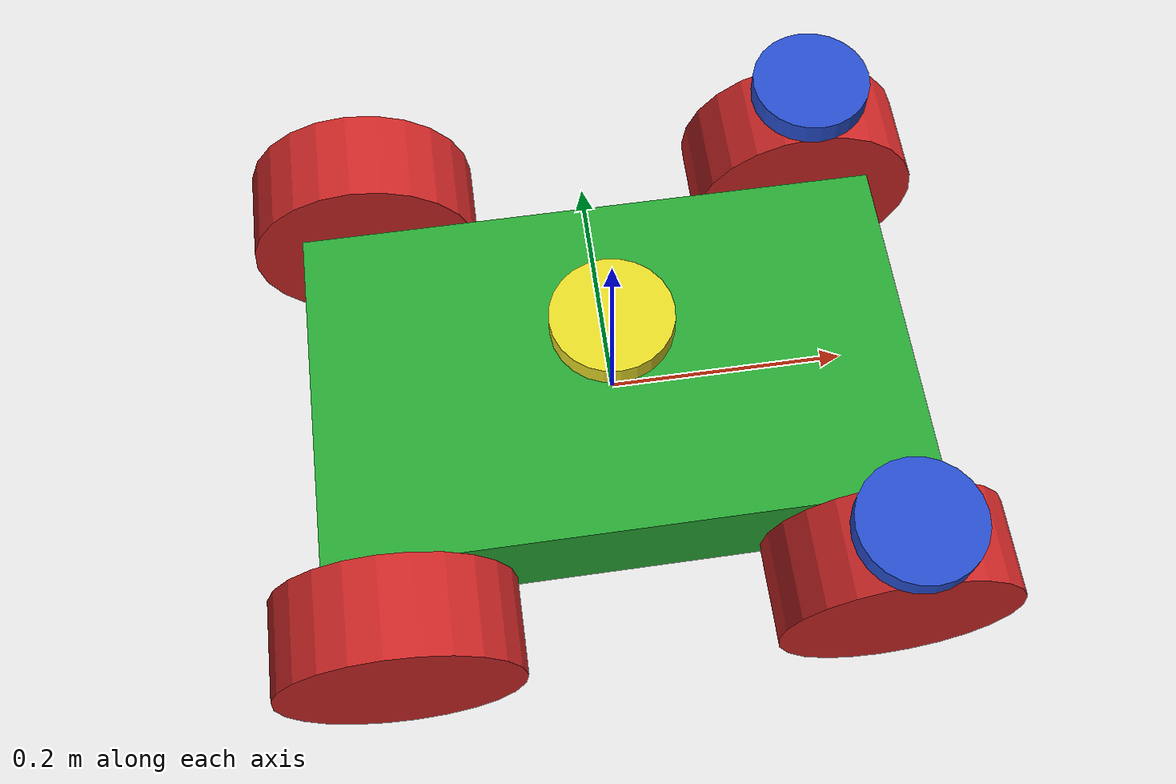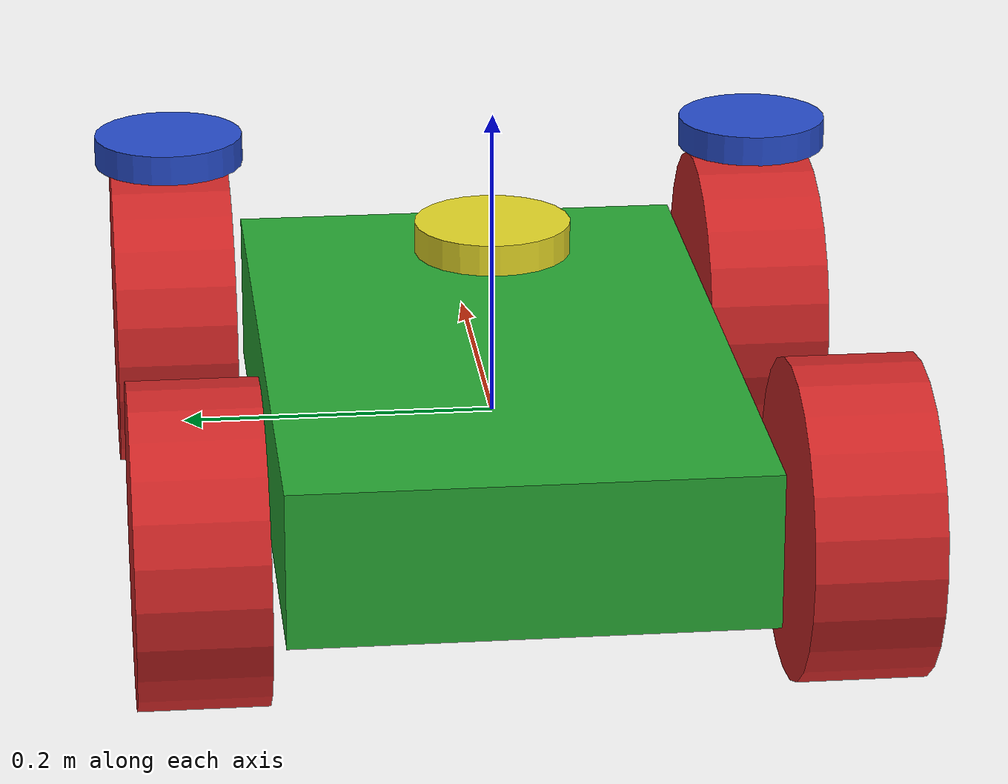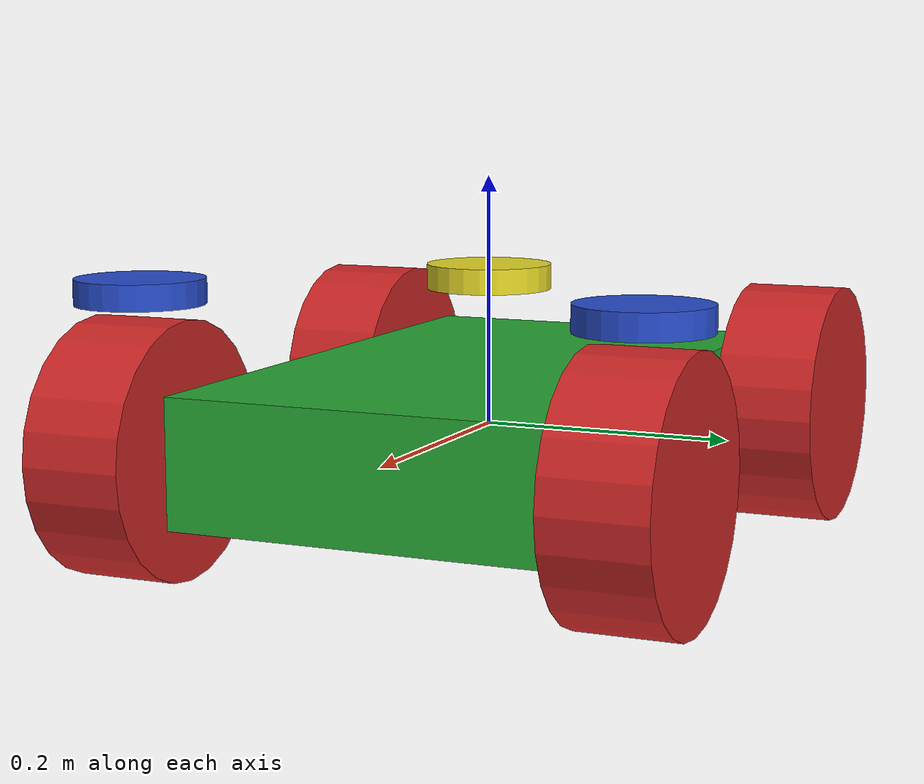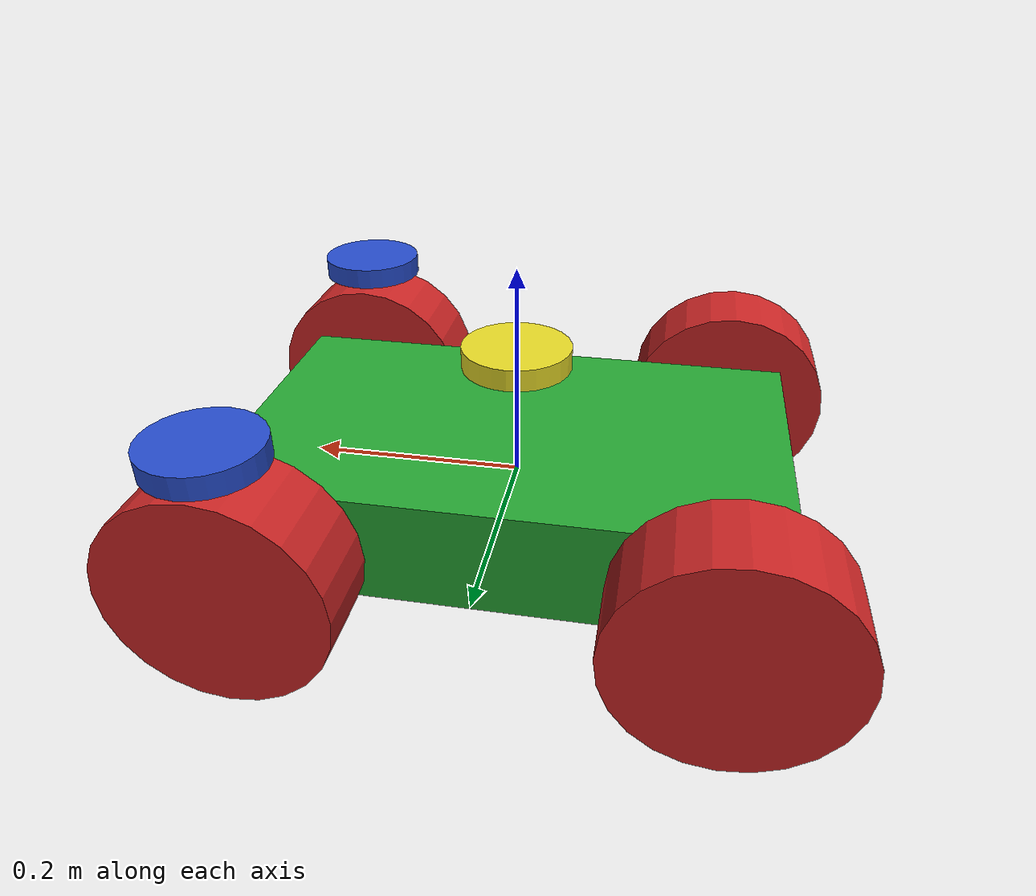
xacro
<?xml version="1.0"?>
<robot name="steer_bot" xmlns:xacro="http://wiki.ros.org/xacro">
  <!-- Include xacro for inertials, materials and wheels -->
  <xacro:include filename="$(find steer_bot_description)/urdf/wheel.xacro"/>

  <xacro:property name="robot_namespace" value="/steer_bot"/>

  <!-- Gazebo plugins -->
  <gazebo>
    <!-- Load ros_control plugin using the steer_bot_hardware_gazebo
    implementation of the hardware_interface::RobotHW -->
    <plugin name="gazebo_ros_control" filename="libgazebo_ros_control.so">
      <robotNamespace>${robot_namespace}</robotNamespace>
      <robotSimType>steer_bot_hardware_gazebo/SteerBotHardwareGazebo</robotSimType>
      <legacyModeNS>false</legacyModeNS>
    </plugin>
  </gazebo>

  <!-- Math constants -->
  <xacro:property name="deg_to_rad" value="0.01745329251994329577"/>

  <!-- Robot base dimensions -->
  <xacro:property name="base_length" value="0.5" />
  <xacro:property name="base_width" value="0.3" />
  <xacro:property name="base_height" value="0.1" />
  <xacro:property name="base_mass" value="5" />

  <!-- Wheel link dimensions -->
  <xacro:property name="wheel_radius" value="0.1" />
  <xacro:property name="wheel_thickness" value="0.08" />
  <xacro:property name="wheel_mass" value="1" />

  <!-- Steering link dimensions -->
  <xacro:property name="steer_radius" value="0.05" />
  <xacro:property name="steer_thickness" value="0.02" />
  <xacro:property name="steer_mass" value="1" />

  <!-- Axle positions -->
  <xacro:property name="axle_offset" value="0.05" />
  <xacro:property name="steer_offset" value="0.02" />

  <!-- Base link -->
  <link name="base_link">
    <visual>
      <origin xyz="0 0 0" rpy="0 0 0"/>
      <geometry>
        <box size="${base_length} ${base_width} ${base_height}"/>
      </geometry>
      <material name="green" />
    </visual>
    <collision>
      <origin xyz="0 0 0" rpy="0 0 0"/>
      <geometry>
        <box size="${base_length} ${base_width} ${base_height}"/>
      </geometry>
    </collision>
    <xacro:solid_cuboid_inertial
        rpy="0 0 0" xyz="0 0 0"
        mass="${base_mass}"
        x="${base_length}" y="${base_width}" z="${base_height}" />
  </link>

  <!-- Front steer and rear wheel joints required for ackermann_steering_controller -->
  <xacro:front_steer
    name="front"
    parent="base"
    steer_radius="${steer_radius}"
    steer_thickness="${steer_thickness}"
    steer_mass="${steer_mass}"
    base_length="${base_length}"
    base_width="${base_width}"
    axle_offset="${axle_offset}"
    steer_height="${wheel_radius+steer_offset}">
  </xacro:front_steer>

  <xacro:rear_wheel_lr
    name="rear"
    parent="base"
    wheel_radius="${wheel_radius/4}"
    wheel_thickness="${wheel_thickness/2}"
    wheel_mass="${wheel_mass/32}">
    <origin xyz="${-base_length/2+axle_offset} 0 0" rpy="${-90 * deg_to_rad} 0 0"/>
  </xacro:rear_wheel_lr>

  <!-- Steerable front wheels -->
  <xacro:front_wheel_lr
    name="front_right"
    parent="base"
    reflect="-1"
    wheel_radius="${wheel_radius}"
    wheel_thickness="${wheel_thickness}"
    wheel_mass="${wheel_mass}"
    steer_radius="${steer_radius}"
    steer_thickness="${steer_thickness}"
    steer_mass="${steer_mass}"
    base_length="${base_length}"
    base_width="${base_width}"
    axle_offset="${axle_offset}"
    steer_height="${wheel_radius+steer_offset}">
  </xacro:front_wheel_lr>
  <xacro:front_wheel_lr
    name="front_left"
    parent="base"
    reflect="1"
    wheel_radius="${wheel_radius}"
    wheel_thickness="${wheel_thickness}"
    wheel_mass="${wheel_mass}"
    steer_radius="${steer_radius}"
    steer_thickness="${steer_thickness}"
    steer_mass="${steer_mass}"
    base_length="${base_length}"
    base_width="${base_width}"
    axle_offset="${axle_offset}"
    steer_height="${wheel_radius+steer_offset}">
  </xacro:front_wheel_lr>

  <!-- Rear wheels -->
  <xacro:rear_wheel_lr
    name="rear_right"
    parent="base"
    wheel_radius="${wheel_radius}"
    wheel_thickness="${wheel_thickness}"
    wheel_mass="${wheel_mass}">
    <origin xyz="${-base_length/2+axle_offset} ${-base_width/2-axle_offset} 0" rpy="${-90 * deg_to_rad} 0 0"/>
  </xacro:rear_wheel_lr>
  <xacro:rear_wheel_lr
    name="rear_left"
    parent="base"
    wheel_radius="${wheel_radius}"
    wheel_thickness="${wheel_thickness}"
    wheel_mass="${wheel_mass}">
    <origin xyz="${-base_length/2+axle_offset} ${+base_width/2+axle_offset} 0" rpy="${-90 * deg_to_rad} 0 0"/>
  </xacro:rear_wheel_lr>

  <!-- Colour -->
  <gazebo reference="base_link">
    <material>Gazebo/Green</material>
  </gazebo>

</robot>

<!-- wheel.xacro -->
<robot name="wheel" xmlns:xacro="http://wiki.ros.org/xacro">
  <!-- Include xacro for materials and inertials -->
  <xacro:include filename="$(find steer_bot_description)/urdf/materials.xacro"/>
  <xacro:include filename="$(find steer_bot_description)/urdf/inertials.xacro"/>

  <!-- Properties -->
  <xacro:property name="steer_effort" value="10.0"/>
  <xacro:property name="steer_velocity" value="5.0"/>
  <xacro:property name="steer_limit_deg" value="45.0"/>

  <!-- Bicycle model front steering link (required for steer_drive_controller) -->
  <xacro:macro name="front_steer"
    params="
      name
      parent
      steer_radius
      steer_thickness
      steer_mass
      base_length
      base_width
      axle_offset
      steer_height">
    <link name="${name}_steer_link">
      <visual>
        <origin xyz="0 0 0" rpy="0 0 0"/>
        <geometry>
          <cylinder radius="${steer_radius}" length="${steer_thickness}"/>
        </geometry>
        <material name="yellow" />
      </visual>
      <collision>
        <origin xyz="0 0 0" rpy="0 0 0"/>
        <geometry>
          <cylinder radius="${steer_radius}" length="${steer_thickness}"/>
        </geometry>
      </collision>
      <xacro:solid_cylinder_inertial
          rpy="0 0 0" xyz="0 0 0"
          mass="${steer_mass}"
          radius="${steer_radius}" length="${steer_thickness}" />
    </link>

    <joint name="${name}_steer_joint" type="revolute">
      <parent link="${parent}_link"/>
      <child link="${name}_steer_link"/>
      <origin xyz="0 0 ${steer_height}" rpy="0 0 0"/>
      <axis xyz="0 0 1"/>
      <limit effort="${steer_effort}"
             lower="${-180.0 * deg_to_rad}" upper="${180.0 * deg_to_rad}"
             velocity="${steer_velocity}"/>
    </joint>

    <transmission name="${name}_steer_joint_trans">
      <type>transmission_interface/SimpleTransmission</type>
      <actuator name="${name}_steer_joint_motor">
        <mechanicalReduction>1</mechanicalReduction>
        <hardwareInterface>hardware_interface/PositionJointInterface</hardwareInterface>
      </actuator>
      <joint name="${name}_steer_joint">
        <hardwareInterface>hardware_interface/PositionJointInterface</hardwareInterface>
      </joint>
    </transmission>

    <gazebo reference="${name}_steer_link">
      <material>Gazebo/Yellow</material>
    </gazebo>
  </xacro:macro>

  <!-- Car steering model front (steerable) wheel links (left/right) -->
  <xacro:macro name="front_wheel_lr"
    params="
      name
      parent
      reflect
      wheel_radius
      wheel_thickness
      wheel_mass
      steer_radius
      steer_thickness
      steer_mass
      base_length
      base_width
      axle_offset
      steer_height">
    <link name="${name}_steer_link">
      <visual>
        <origin xyz="0 0 0" rpy="0 0 0"/>
        <geometry>
          <cylinder radius="${steer_radius}" length="${steer_thickness}"/>
        </geometry>
        <material name="blue" />
      </visual>
      <collision>
        <origin xyz="0 0 0" rpy="0 0 0"/>
        <geometry>
          <cylinder radius="${steer_radius}" length="${steer_thickness}"/>
        </geometry>
      </collision>
      <xacro:solid_cylinder_inertial
          rpy="0 0 0" xyz="0 0 0"
          mass="${steer_mass}"
          radius="${steer_radius}" length="${steer_thickness}" />
    </link>

    <joint name="${name}_steer_joint" type="revolute">
      <parent link="${parent}_link"/>
      <child link="${name}_steer_link"/>
      <origin xyz="${base_length/2-axle_offset} ${reflect*(base_width/2+axle_offset)} ${steer_height}" rpy="0 0 0"/>
      <axis xyz="0 0 1"/>
      <limit effort="${steer_effort}"
             lower="${steer_limit_deg * deg_to_rad * -1.0}" upper="${steer_limit_deg * deg_to_rad}"
             velocity="${steer_velocity}"/>
    </joint>

    <link name="${name}_wheel_link">
      <visual>
        <origin xyz="0 0 0" rpy="0 0 0"/>
        <geometry>
          <cylinder radius="${wheel_radius}" length="${wheel_thickness}"/>
        </geometry>
        <material name="red" />
      </visual>
      <collision>
        <origin xyz="0 0 0" rpy="0 0 0"/>
        <geometry>
          <cylinder radius="${wheel_radius}" length="${wheel_thickness}"/>
        </geometry>
      </collision>
      <xacro:solid_cylinder_inertial
          rpy="0 0 0" xyz="0 0 0"
          mass="${wheel_mass}"
          radius="${wheel_radius}" length="${wheel_thickness}" />
    </link>

    <joint name="${name}_wheel_joint" type="continuous">
      <parent link="${name}_steer_link"/>
      <child link="${name}_wheel_link"/>
      <origin xyz="0 0 ${-steer_height}" rpy="${-90 * deg_to_rad} 0 0"/>
      <axis xyz="0 0 1"/>
    </joint>

    <transmission name="${name}_steer_joint_trans">
      <type>transmission_interface/SimpleTransmission</type>
      <actuator name="${name}_steer_joint_motor">
        <mechanicalReduction>1</mechanicalReduction>
        <hardwareInterface>hardware_interface/PositionJointInterface</hardwareInterface>
      </actuator>
      <joint name="${name}_steer_joint">
        <hardwareInterface>hardware_interface/PositionJointInterface</hardwareInterface>
      </joint>
    </transmission>

    <transmission name="${name}_wheel_joint_trans">
      <type>transmission_interface/SimpleTransmission</type>
      <actuator name="${name}_wheel_joint_motor">
        <mechanicalReduction>1</mechanicalReduction>
        <hardwareInterface>hardware_interface/VelocityJointInterface</hardwareInterface>
      </actuator>
      <joint name="${name}_wheel_joint">
        <hardwareInterface>hardware_interface/VelocityJointInterface</hardwareInterface>
      </joint>
    </transmission>

    <gazebo reference="${name}_steer_link">
      <material>Gazebo/Blue</material>
    </gazebo>

    <gazebo reference="${name}_wheel_link">
      <material>Gazebo/Red</material>
    </gazebo>
  </xacro:macro>

  <!-- Car steering model rear wheel links (left/right) -->
  <xacro:macro name="rear_wheel_lr"
    params="
      name
      parent
      wheel_radius
      wheel_thickness
      wheel_mass
      *origin">
    <link name="${name}_wheel_link">
      <visual>
        <origin xyz="0 0 0" rpy="0 0 0"/>
        <geometry>
          <cylinder radius="${wheel_radius}" length="${wheel_thickness}"/>
        </geometry>
        <material name="red" />
      </visual>
      <collision>
        <origin xyz="0 0 0" rpy="0 0 0"/>
        <geometry>
          <cylinder radius="${wheel_radius}" length="${wheel_thickness}"/>
        </geometry>
      </collision>
      <xacro:solid_cylinder_inertial
          rpy="0 0 0" xyz="0 0 0"
          mass="${wheel_mass}"
          radius="${wheel_radius}" length="${wheel_thickness}" />
    </link>

    <joint name="${name}_wheel_joint" type="continuous">
      <parent link="${parent}_link"/>
      <child link="${name}_wheel_link"/>
      <xacro:insert_block name="origin"/>
      <axis xyz="0 0 1"/>
    </joint>

    <transmission name="${name}_wheel_joint_trans">
      <type>transmission_interface/SimpleTransmission</type>
      <actuator name="${name}_wheel_joint_motor">
        <mechanicalReduction>1</mechanicalReduction>
        <hardwareInterface>hardware_interface/VelocityJointInterface</hardwareInterface>
      </actuator>
      <joint name="${name}_wheel_joint">
        <hardwareInterface>hardware_interface/VelocityJointInterface</hardwareInterface>
      </joint>
    </transmission>

    <gazebo reference="${name}_wheel_link">
      <material>Gazebo/Red</material>
    </gazebo>
  </xacro:macro>
</robot>
